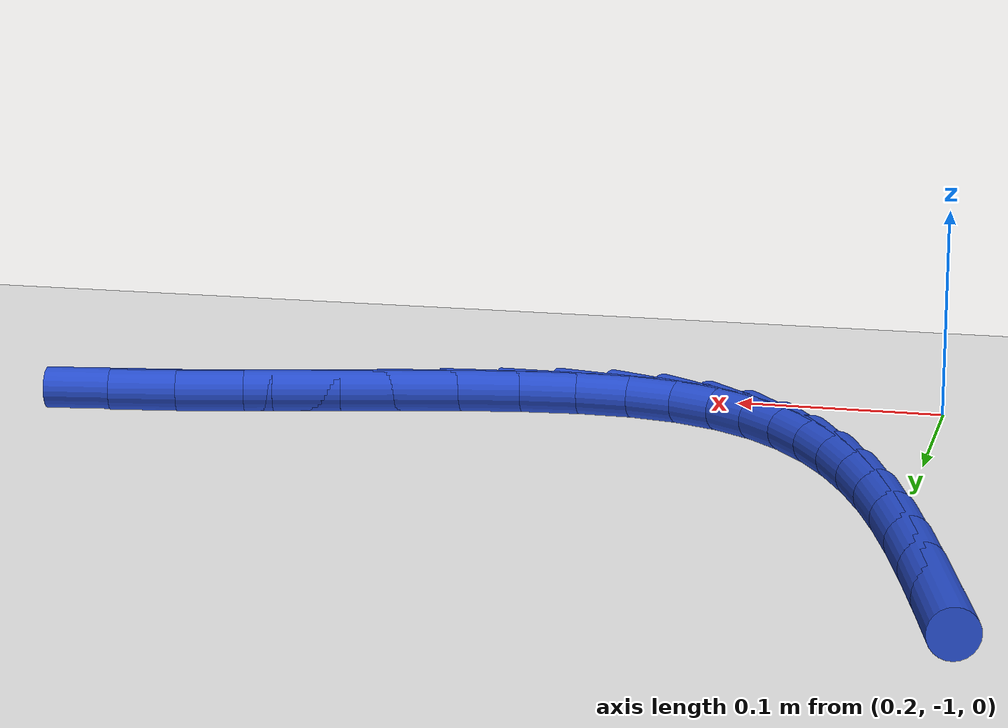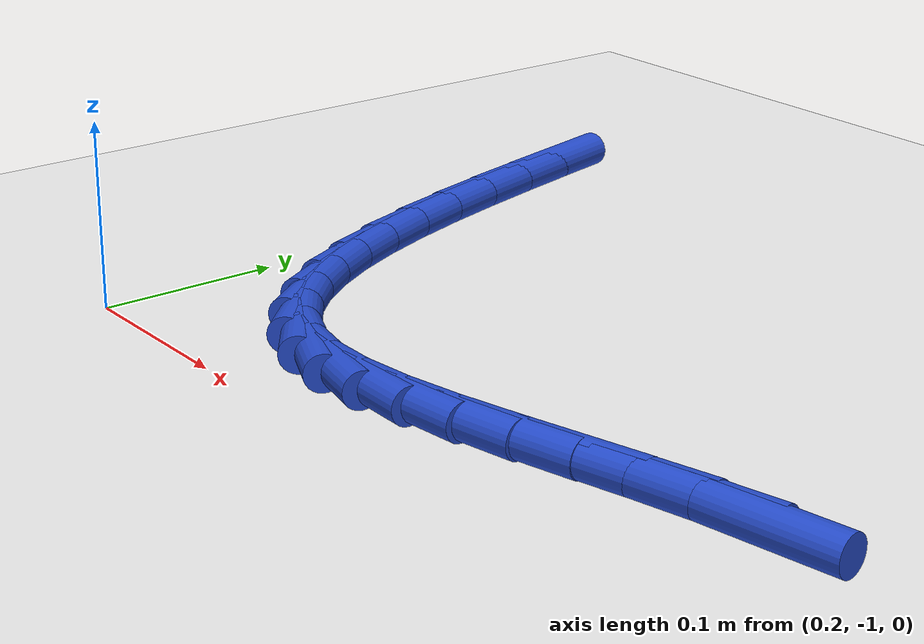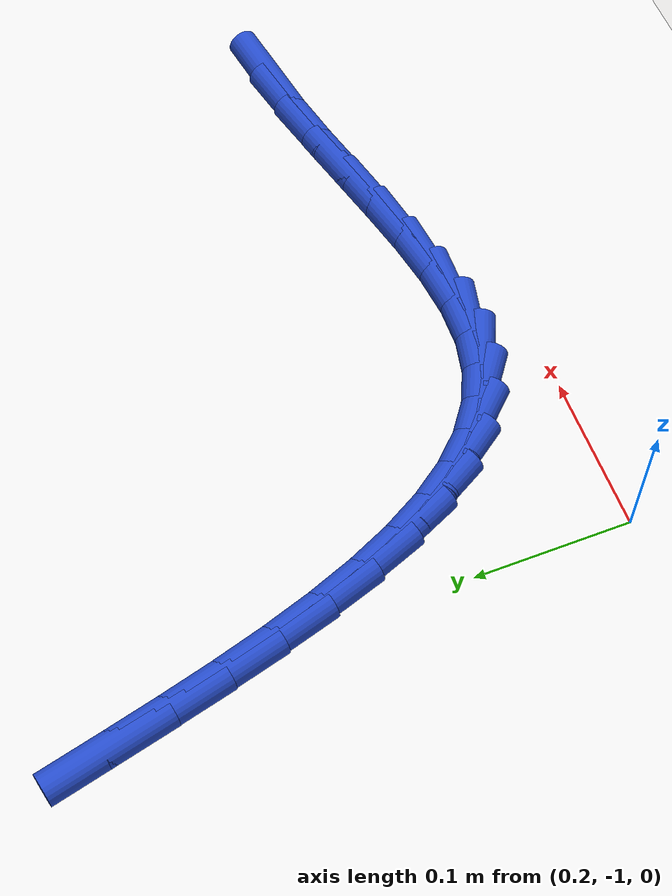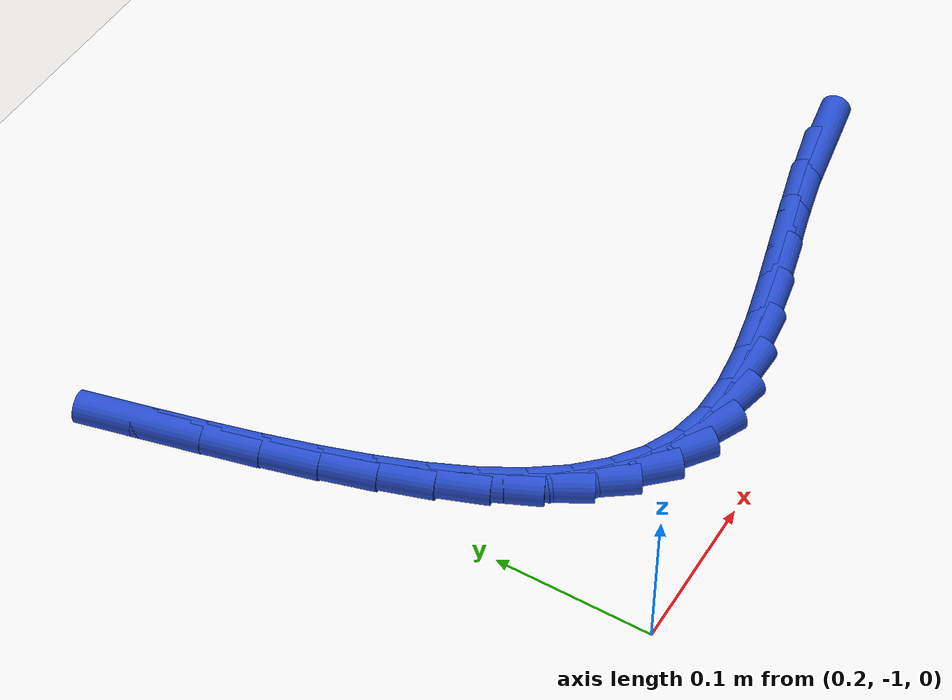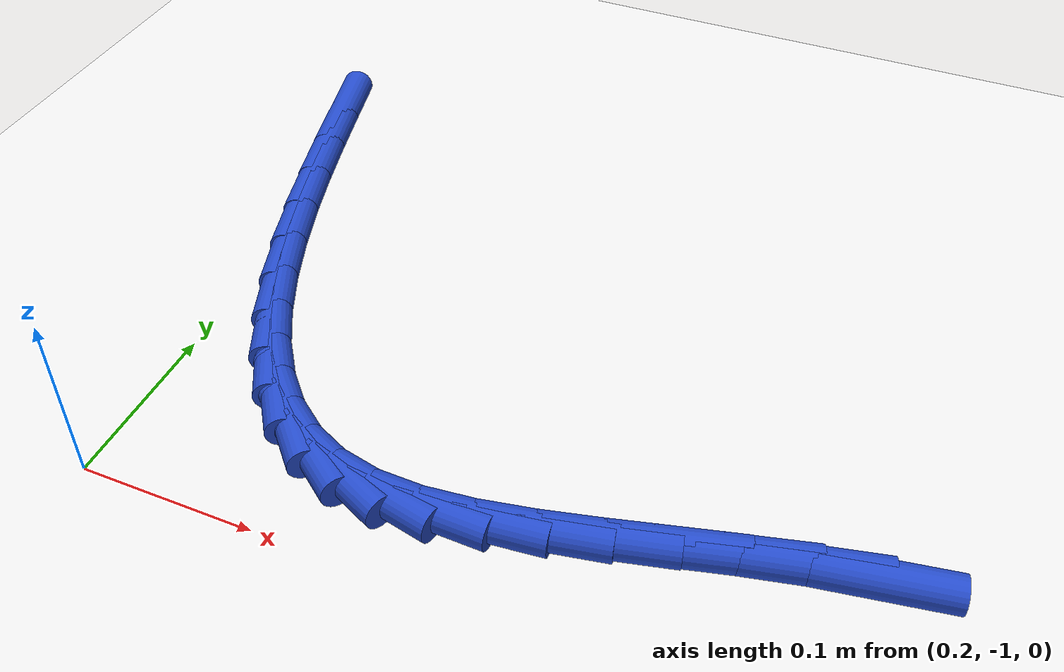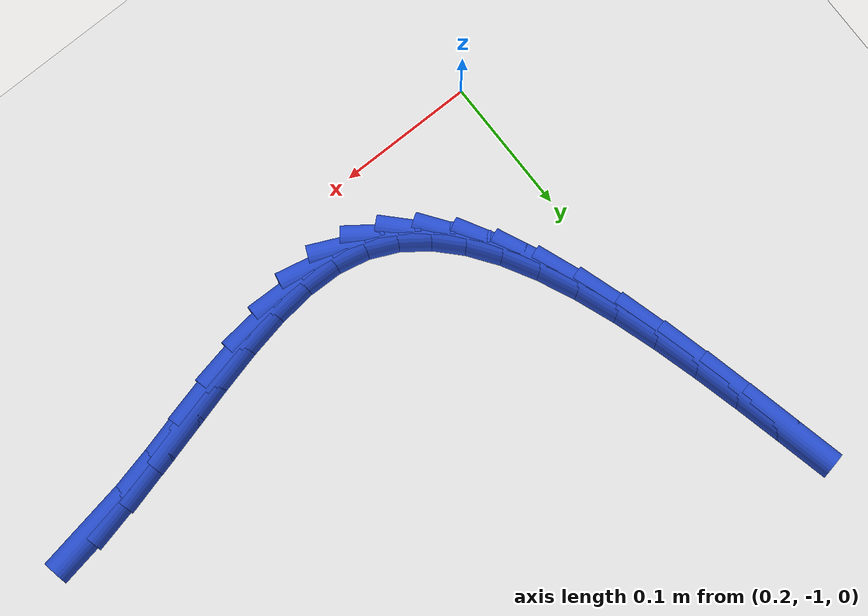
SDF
<sdf version="1.6">
 <world name="default">
  <model name="ground_plane">
   <static>1</static>
   <link name="link">
    <collision name="collision">
     <geometry><plane><normal>0 0 1</normal><size>100 100</size></plane></geometry>
     <surface><friction><ode><mu>100</mu><mu2>50</mu2></ode></friction></surface>
    </collision>
    <visual name="visual">
     <cast_shadows>0</cast_shadows>
     <geometry><plane><normal>0 0 1</normal><size>100 100</size></plane></geometry>
     <material>
      <script><uri>file://media/materials/scripts/gazebo.material</uri><name>Gazebo/WhiteGlow</name></script>
     </material>
    </visual>
   </link>
  </model>
  <model name="line">
   <link name="link_208">
    <pose>0.5874341497898695 -0.9139068642803316 0.01 0 1.57 0.17024124787474726</pose>
    <collision name="collision">
     <geometry><cylinder><radius>0.01</radius><length>0.08</length></cylinder></geometry>
    </collision>
    <visual name="visual">
     <material>
      <script><name>Gazebo/Blue</name><uri>file://media/materials/scripts/gazebo.material</uri></script>
     </material>
     <geometry><cylinder><radius>0.01</radius><length>0.08</length></cylinder></geometry>
    </visual>
   </link>
   <link name="link_209">
    <pose>0.5561364497563251 -0.919287101318627 0.01 0 1.57 0.22692073438048901</pose>
    <collision name="collision">
     <geometry><cylinder><radius>0.01</radius><length>0.08</length></cylinder></geometry>
    </collision>
    <visual name="visual">
     <material>
      <script><name>Gazebo/Blue</name><uri>file://media/materials/scripts/gazebo.material</uri></script>
     </material>
     <geometry><cylinder><radius>0.01</radius><length>0.08</length></cylinder></geometry>
    </visual>
   </link>
   <link name="link_210">
    <pose>0.5243064346683682 -0.9266365757826625 0.01 0 1.57 0.256538887340919</pose>
    <collision name="collision">
     <geometry><cylinder><radius>0.01</radius><length>0.08</length></cylinder></geometry>
    </collision>
    <visual name="visual">
     <material>
      <script><name>Gazebo/Blue</name><uri>file://media/materials/scripts/gazebo.material</uri></script>
     </material>
     <geometry><cylinder><radius>0.01</radius><length>0.08</length></cylinder></geometry>
    </visual>
   </link>
   <link name="link_211">
    <pose>0.49236255677190643 -0.9350160583515442 0.01 0 1.57 0.26157937354468547</pose>
    <collision name="collision">
     <geometry><cylinder><radius>0.01</radius><length>0.08</length></cylinder></geometry>
    </collision>
    <visual name="visual">
     <material>
      <script><name>Gazebo/Blue</name><uri>file://media/materials/scripts/gazebo.material</uri></script>
     </material>
     <geometry><cylinder><radius>0.01</radius><length>0.08</length></cylinder></geometry>
    </visual>
   </link>
   <link name="link_212">
    <pose>0.460723268312846 -0.9434863197043788 0.01 0 1.57 0.24171099271326404</pose>
    <collision name="collision">
     <geometry><cylinder><radius>0.01</radius><length>0.08</length></cylinder></geometry>
    </collision>
    <visual name="visual">
     <material>
      <script><name>Gazebo/Blue</name><uri>file://media/materials/scripts/gazebo.material</uri></script>
     </material>
     <geometry><cylinder><radius>0.01</radius><length>0.08</length></cylinder></geometry>
    </visual>
   </link>
   <link name="link_213">
    <pose>0.4298070215370938 -0.9511081305202728 0.01 0 1.57 0.19349081416605118</pose>
    <collision name="collision">
     <geometry><cylinder><radius>0.01</radius><length>0.08</length></cylinder></geometry>
    </collision>
    <visual name="visual">
     <material>
      <script><name>Gazebo/Blue</name><uri>file://media/materials/scripts/gazebo.material</uri></script>
     </material>
     <geometry><cylinder><radius>0.01</radius><length>0.08</length></cylinder></geometry>
    </visual>
   </link>
   <link name="link_214">
    <pose>0.4000322686905561 -0.9569422614783325 0.01 0 1.57 0.10968534866179927</pose>
    <collision name="collision">
     <geometry><cylinder><radius>0.01</radius><length>0.08</length></cylinder></geometry>
    </collision>
    <visual name="visual">
     <material>
      <script><name>Gazebo/Blue</name><uri>file://media/materials/scripts/gazebo.material</uri></script>
     </material>
     <geometry><cylinder><radius>0.01</radius><length>0.08</length></cylinder></geometry>
    </visual>
   </link>
   <link name="link_215">
    <pose>0.3718174620191396 -0.9600494832576643 0.01 0 1.57 -0.021299874145239154</pose>
    <collision name="collision">
     <geometry><cylinder><radius>0.01</radius><length>0.08</length></cylinder></geometry>
    </collision>
    <visual name="visual">
     <material>
      <script><name>Gazebo/Blue</name><uri>file://media/materials/scripts/gazebo.material</uri></script>
     </material>
     <geometry><cylinder><radius>0.01</radius><length>0.08</length></cylinder></geometry>
    </visual>
   </link>
   <link name="link_216">
    <pose>0.3455810537687509 -0.9594905665373745 0.01 0 1.57 -0.21077767676039497</pose>
    <collision name="collision">
     <geometry><cylinder><radius>0.01</radius><length>0.08</length></cylinder></geometry>
    </collision>
    <visual name="visual">
     <material>
      <script><name>Gazebo/Blue</name><uri>file://media/materials/scripts/gazebo.material</uri></script>
     </material>
     <geometry><cylinder><radius>0.01</radius><length>0.08</length></cylinder></geometry>
    </visual>
   </link>
   <link name="link_217">
    <pose>0.32171433217925904 -0.9543841481406428 0.01 0 1.57 -0.42814386081508515</pose>
    <collision name="collision">
     <geometry><cylinder><radius>0.01</radius><length>0.08</length></cylinder></geometry>
    </collision>
    <visual name="visual">
     <material>
      <script><name>Gazebo/Blue</name><uri>file://media/materials/scripts/gazebo.material</uri></script>
     </material>
     <geometry><cylinder><radius>0.01</radius><length>0.08</length></cylinder></geometry>
    </visual>
   </link>
   <link name="link_218">
    <pose>0.3002594362571051 -0.9445926403049429 0.01 0 1.57 -0.6322975106622631</pose>
    <collision name="collision">
     <geometry><cylinder><radius>0.01</radius><length>0.08</length></cylinder></geometry>
    </collision>
    <visual name="visual">
     <material>
      <script><name>Gazebo/Blue</name><uri>file://media/materials/scripts/gazebo.material</uri></script>
     </material>
     <geometry><cylinder><radius>0.01</radius><length>0.08</length></cylinder></geometry>
    </visual>
   </link>
   <link name="link_219">
    <pose>0.2810163190703281 -0.9304943720432279 0.01 0 1.57 -0.8075225801884218</pose>
    <collision name="collision">
     <geometry><cylinder><radius>0.01</radius><length>0.08</length></cylinder></geometry>
    </collision>
    <visual name="visual">
     <material>
      <script><name>Gazebo/Blue</name><uri>file://media/materials/scripts/gazebo.material</uri></script>
     </material>
     <geometry><cylinder><radius>0.01</radius><length>0.08</length></cylinder></geometry>
    </visual>
   </link>
   <link name="link_220">
    <pose>0.2637800637197606 -0.9124780466197175 0.01 0 1.57 -0.9491793496626568</pose>
    <collision name="collision">
     <geometry><cylinder><radius>0.01</radius><length>0.08</length></cylinder></geometry>
    </collision>
    <visual name="visual">
     <material>
      <script><name>Gazebo/Blue</name><uri>file://media/materials/scripts/gazebo.material</uri></script>
     </material>
     <geometry><cylinder><radius>0.01</radius><length>0.08</length></cylinder></geometry>
    </visual>
   </link>
   <link name="link_221">
    <pose>0.24834575330623496 -0.89093236729863 0.01 0 1.57 -1.0599091296669005</pose>
    <collision name="collision">
     <geometry><cylinder><radius>0.01</radius><length>0.08</length></cylinder></geometry>
    </collision>
    <visual name="visual">
     <material>
      <script><name>Gazebo/Blue</name><uri>file://media/materials/scripts/gazebo.material</uri></script>
     </material>
     <geometry><cylinder><radius>0.01</radius><length>0.08</length></cylinder></geometry>
    </visual>
   </link>
   <link name="link_222">
    <pose>0.23450847093058352 -0.8662460373441845 0.01 0 1.57 -1.144977803451397</pose>
    <collision name="collision">
     <geometry><cylinder><radius>0.01</radius><length>0.08</length></cylinder></geometry>
    </collision>
    <visual name="visual">
     <material>
      <script><name>Gazebo/Blue</name><uri>file://media/materials/scripts/gazebo.material</uri></script>
     </material>
     <geometry><cylinder><radius>0.01</radius><length>0.08</length></cylinder></geometry>
    </visual>
   </link>
   <link name="link_223">
    <pose>0.22206329969363892 -0.8388077600206 0.01 0 1.57 -1.209603598973515</pose>
    <collision name="collision">
     <geometry><cylinder><radius>0.01</radius><length>0.08</length></cylinder></geometry>
    </collision>
    <visual name="visual">
     <material>
      <script><name>Gazebo/Blue</name><uri>file://media/materials/scripts/gazebo.material</uri></script>
     </material>
     <geometry><cylinder><radius>0.01</radius><length>0.08</length></cylinder></geometry>
    </visual>
   </link>
   <link name="link_224">
    <pose>0.21080532269623337 -0.809006238592095 0.01 0 1.57 -1.2580315946855518</pose>
    <collision name="collision">
     <geometry><cylinder><radius>0.01</radius><length>0.08</length></cylinder></geometry>
    </collision>
    <visual name="visual">
     <material>
      <script><name>Gazebo/Blue</name><uri>file://media/materials/scripts/gazebo.material</uri></script>
     </material>
     <geometry><cylinder><radius>0.01</radius><length>0.08</length></cylinder></geometry>
    </visual>
   </link>
   <link name="link_225">
    <pose>0.2005296230391995 -0.7772301763228887 0.01 0 1.57 -1.2934289337917593</pose>
    <collision name="collision">
     <geometry><cylinder><radius>0.01</radius><length>0.08</length></cylinder></geometry>
    </collision>
    <visual name="visual">
     <material>
      <script><name>Gazebo/Blue</name><uri>file://media/materials/scripts/gazebo.material</uri></script>
     </material>
     <geometry><cylinder><radius>0.01</radius><length>0.08</length></cylinder></geometry>
    </visual>
   </link>
   <link name="link_226">
    <pose>0.19103128382336965 -0.7438682764772001 0.01 0 1.57 -1.3180403488092307</pose>
    <collision name="collision">
     <geometry><cylinder><radius>0.01</radius><length>0.08</length></cylinder></geometry>
    </collision>
    <visual name="visual">
     <material>
      <script><name>Gazebo/Blue</name><uri>file://media/materials/scripts/gazebo.material</uri></script>
     </material>
     <geometry><cylinder><radius>0.01</radius><length>0.08</length></cylinder></geometry>
    </visual>
   </link>
   <link name="link_227">
    <pose>0.1821053881495763 -0.7093092423192482 0.01 0 1.57 -1.333376024443391</pose>
    <collision name="collision">
     <geometry><cylinder><radius>0.01</radius><length>0.08</length></cylinder></geometry>
    </collision>
    <visual name="visual">
     <material>
      <script><name>Gazebo/Blue</name><uri>file://media/materials/scripts/gazebo.material</uri></script>
     </material>
     <geometry><cylinder><radius>0.01</radius><length>0.08</length></cylinder></geometry>
    </visual>
   </link>
   <link name="link_228">
    <pose>0.17354701911865186 -0.6739417771132512 0.01 0 1.57 -1.340361246442116</pose>
    <collision name="collision">
     <geometry><cylinder><radius>0.01</radius><length>0.08</length></cylinder></geometry>
    </collision>
    <visual name="visual">
     <material>
      <script><name>Gazebo/Blue</name><uri>file://media/materials/scripts/gazebo.material</uri></script>
     </material>
     <geometry><cylinder><radius>0.01</radius><length>0.08</length></cylinder></geometry>
    </visual>
   </link>
  </model>
 </world>
</sdf>
